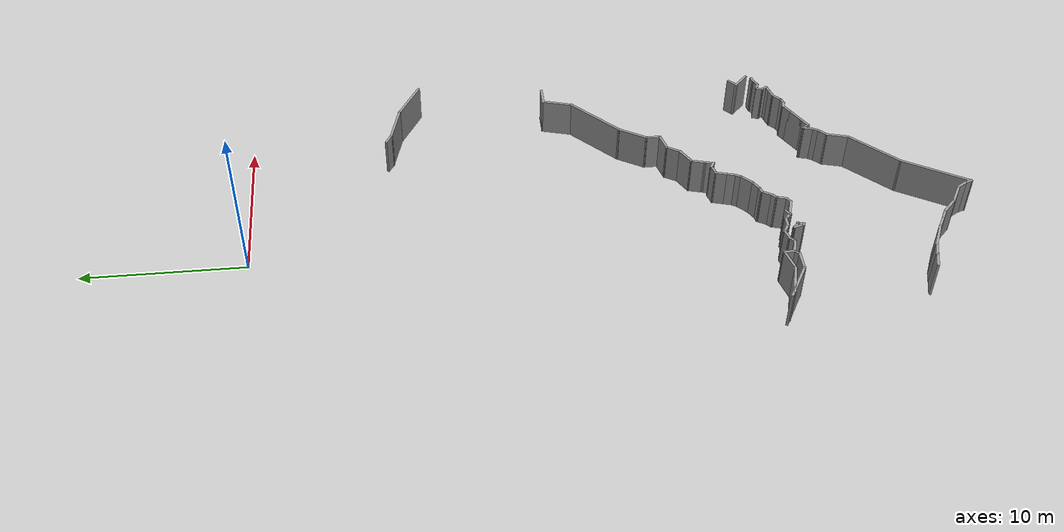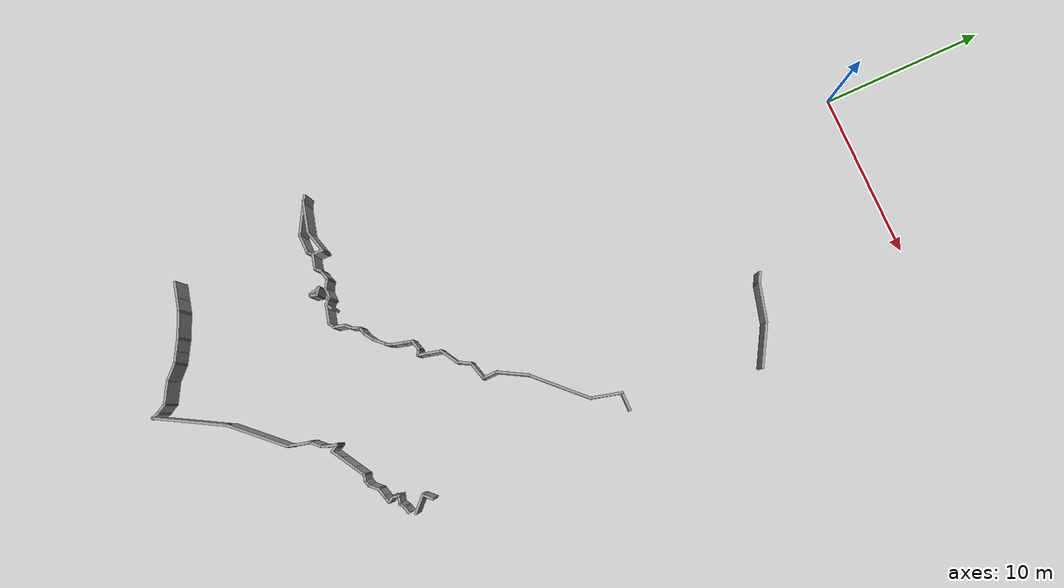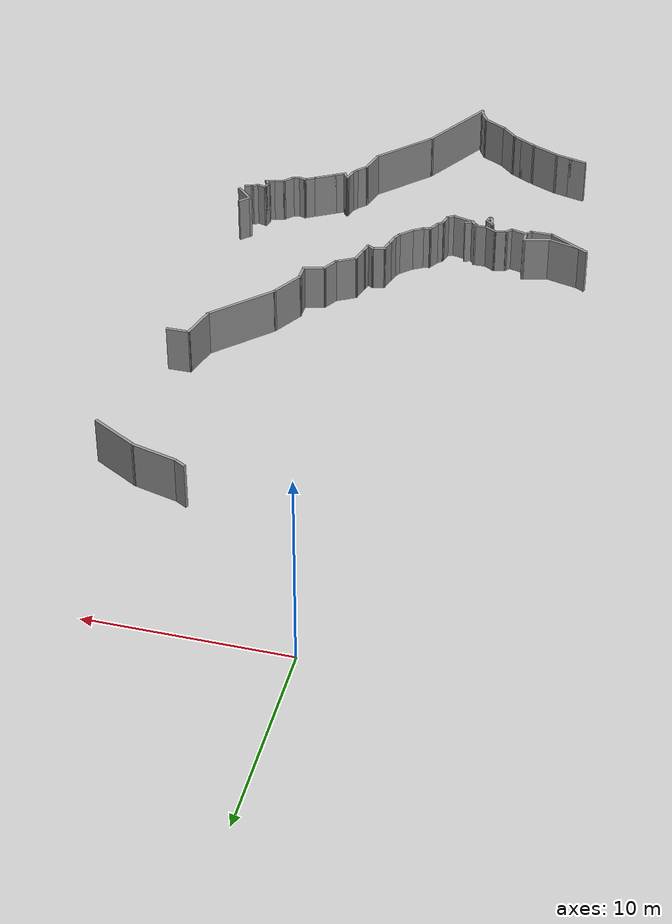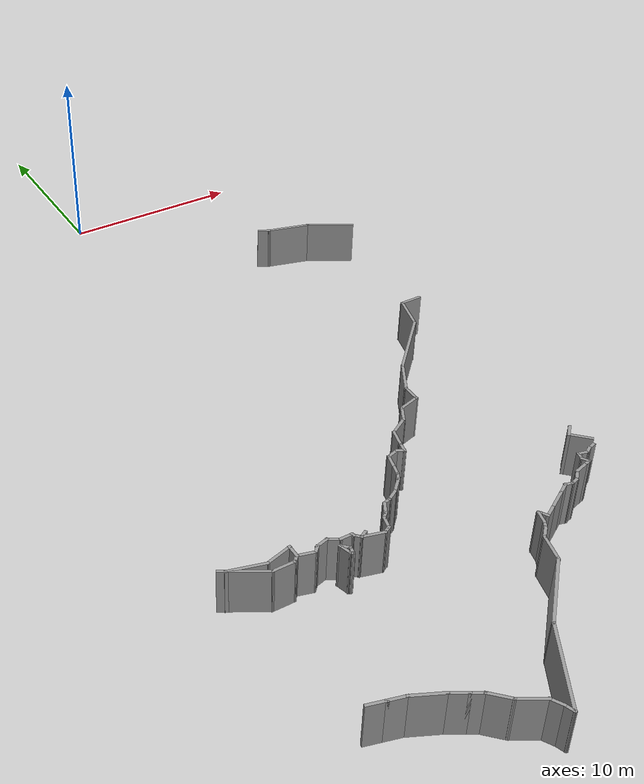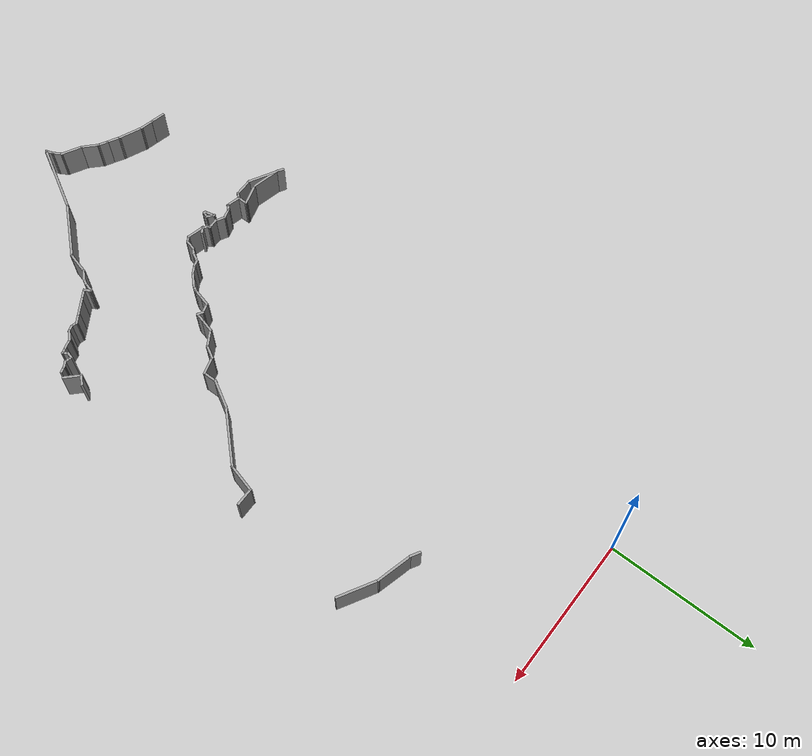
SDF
<sdf version="1.7">
 <model name="office_track1">
  <pose>2.3626 4.43866 0 0 -0 0</pose>
  <link name="Wall_111">
   <collision name="Wall_111_Collision">
    <geometry><box><size>2 0.15 2.5</size></box></geometry>
    <pose>0 0 1.25 0 -0 0</pose>
   </collision>
   <visual name="Wall_111_Visual">
    <pose>0 0 1.25 0 -0 0</pose>
    <geometry><box><size>2 0.15 2.5</size></box></geometry>
    <material>
     <script><uri>file://media/materials/scripts/gazebo.material</uri><name>Gazebo/Grey</name></script>
     <ambient>1 1 1 1</ambient>
    </material>
    <meta><layer>0</layer></meta>
   </visual>
   <pose>-8.63653 -35.8732 0 0 -0 -0.261799</pose>
  </link>
  <link name="Wall_112">
   <collision name="Wall_112_Collision">
    <geometry><box><size>1.5 0.15 2.5</size></box></geometry>
    <pose>0 0 1.25 0 -0 0</pose>
   </collision>
   <visual name="Wall_112_Visual">
    <pose>0 0 1.25 0 -0 0</pose>
    <geometry><box><size>1.5 0.15 2.5</size></box></geometry>
    <material>
     <script><uri>file://media/materials/scripts/gazebo.material</uri><name>Gazebo/Grey</name></script>
     <ambient>1 1 1 1</ambient>
    </material>
    <meta><layer>0</layer></meta>
   </visual>
   <pose>-7.09104 -35.9379 0 0 -0 0.261799</pose>
  </link>
  <link name="Wall_113">
   <collision name="Wall_113_Collision">
    <geometry><box><size>0.75 0.15 2.5</size></box></geometry>
    <pose>0 0 1.25 0 -0 0</pose>
   </collision>
   <visual name="Wall_113_Visual">
    <pose>0 0 1.25 0 -0 0</pose>
    <geometry><box><size>0.75 0.15 2.5</size></box></geometry>
    <material>
     <script><uri>file://media/materials/scripts/gazebo.material</uri><name>Gazebo/Grey</name></script>
     <ambient>1 1 1 1</ambient>
    </material>
    <meta><layer>0</layer></meta>
   </visual>
   <pose>-6.43904 -36.0632 0 0 -0 -1.5708</pose>
  </link>
  <link name="Wall_114">
   <collision name="Wall_114_Collision">
    <geometry><box><size>0.5 0.15 2.5</size></box></geometry>
    <pose>0 0 1.25 0 -0 0</pose>
   </collision>
   <visual name="Wall_114_Visual">
    <pose>0 0 1.25 0 -0 0</pose>
    <geometry><box><size>0.5 0.15 2.5</size></box></geometry>
    <material>
     <script><uri>file://media/materials/scripts/gazebo.material</uri><name>Gazebo/Grey</name></script>
     <ambient>1 1 1 1</ambient>
    </material>
    <meta><layer>0</layer></meta>
   </visual>
   <pose>-6.56279 -36.4869 0 0 -0 -2.35619</pose>
  </link>
  <link name="Wall_115">
   <collision name="Wall_115_Collision">
    <geometry><box><size>1.25 0.15 2.5</size></box></geometry>
    <pose>0 0 1.25 0 -0 0</pose>
   </collision>
   <visual name="Wall_115_Visual">
    <pose>0 0 1.25 0 -0 0</pose>
    <geometry><box><size>1.25 0.15 2.5</size></box></geometry>
    <material>
     <script><uri>file://media/materials/scripts/gazebo.material</uri><name>Gazebo/Grey</name></script>
     <ambient>1 1 1 1</ambient>
    </material>
    <meta><layer>0</layer></meta>
   </visual>
   <pose>-7.23653 -36.6107 0 0 -0 3.14159</pose>
  </link>
  <link name="Wall_116">
   <collision name="Wall_116_Collision">
    <geometry><box><size>2.5 0.15 2.5</size></box></geometry>
    <pose>0 0 1.25 0 -0 0</pose>
   </collision>
   <visual name="Wall_116_Visual">
    <pose>0 0 1.25 0 -0 0</pose>
    <geometry><box><size>2.5 0.15 2.5</size></box></geometry>
    <material>
     <script><uri>file://media/materials/scripts/gazebo.material</uri><name>Gazebo/Grey</name></script>
     <ambient>1 1 1 1</ambient>
    </material>
    <meta><layer>0</layer></meta>
   </visual>
   <pose>-8.80411 -36.0232 0 0 -0 2.61799</pose>
  </link>
  <link name="Wall_118">
   <collision name="Wall_118_Collision">
    <geometry><box><size>1 0.15 2.5</size></box></geometry>
    <pose>0 0 1.25 0 -0 0</pose>
   </collision>
   <visual name="Wall_118_Visual">
    <pose>0 0 1.25 0 -0 0</pose>
    <geometry><box><size>1 0.15 2.5</size></box></geometry>
    <material>
     <script><uri>file://media/materials/scripts/gazebo.material</uri><name>Gazebo/Grey</name></script>
     <ambient>1 1 1 1</ambient>
    </material>
    <meta><layer>0</layer></meta>
   </visual>
   <pose>-6.02853 -36.4732 0 0 -0 -0.261799</pose>
  </link>
  <link name="Wall_119">
   <collision name="Wall_119_Collision">
    <geometry><box><size>0.5 0.15 2.5</size></box></geometry>
    <pose>0 0 1.25 0 -0 0</pose>
   </collision>
   <visual name="Wall_119_Visual">
    <pose>0 0 1.25 0 -0 0</pose>
    <geometry><box><size>0.5 0.15 2.5</size></box></geometry>
    <material>
     <script><uri>file://media/materials/scripts/gazebo.material</uri><name>Gazebo/Grey</name></script>
     <ambient>1 1 1 1</ambient>
    </material>
    <meta><layer>0</layer></meta>
   </visual>
   <pose>-5.49426 -36.4594 0 0 -0 0.785398</pose>
  </link>
  <link name="Wall_120">
   <collision name="Wall_120_Collision">
    <geometry><box><size>0.75 0.15 2.5</size></box></geometry>
    <pose>0 0 1.25 0 -0 0</pose>
   </collision>
   <visual name="Wall_120_Visual">
    <pose>0 0 1.25 0 -0 0</pose>
    <geometry><box><size>0.75 0.15 2.5</size></box></geometry>
    <material>
     <script><uri>file://media/materials/scripts/gazebo.material</uri><name>Gazebo/Grey</name></script>
     <ambient>1 1 1 1</ambient>
    </material>
    <meta><layer>0</layer></meta>
   </visual>
   <pose>-5.08074 -36.258 0 0 -0 0.261799</pose>
  </link>
  <link name="Wall_121">
   <collision name="Wall_121_Collision">
    <geometry><box><size>0.75 0.15 2.5</size></box></geometry>
    <pose>0 0 1.25 0 -0 0</pose>
   </collision>
   <visual name="Wall_121_Visual">
    <pose>0 0 1.25 0 -0 0</pose>
    <geometry><box><size>0.75 0.15 2.5</size></box></geometry>
    <material>
     <script><uri>file://media/materials/scripts/gazebo.material</uri><name>Gazebo/Grey</name></script>
     <ambient>1 1 1 1</ambient>
    </material>
    <meta><layer>0</layer></meta>
   </visual>
   <pose>-4.53116 -36.3304 0 0 -0 -0.523599</pose>
  </link>
  <link name="Wall_122">
   <collision name="Wall_122_Collision">
    <geometry><box><size>0.75 0.15 2.5</size></box></geometry>
    <pose>0 0 1.25 0 -0 0</pose>
   </collision>
   <visual name="Wall_122_Visual">
    <pose>0 0 1.25 0 -0 0</pose>
    <geometry><box><size>0.75 0.15 2.5</size></box></geometry>
    <material>
     <script><uri>file://media/materials/scripts/gazebo.material</uri><name>Gazebo/Grey</name></script>
     <ambient>1 1 1 1</ambient>
    </material>
    <meta><layer>0</layer></meta>
   </visual>
   <pose>-3.97135 -36.4804 0 0 -0 0</pose>
  </link>
  <link name="Wall_123">
   <collision name="Wall_123_Collision">
    <geometry><box><size>0.25 0.15 2.5</size></box></geometry>
    <pose>0 0 1.25 0 -0 0</pose>
   </collision>
   <visual name="Wall_123_Visual">
    <pose>0 0 1.25 0 -0 0</pose>
    <geometry><box><size>0.25 0.15 2.5</size></box></geometry>
    <material>
     <script><uri>file://media/materials/scripts/gazebo.material</uri><name>Gazebo/Grey</name></script>
     <ambient>1 1 1 1</ambient>
    </material>
    <meta><layer>0</layer></meta>
   </visual>
   <pose>-3.65841 -36.5287 0 0 -0 -1.309</pose>
  </link>
  <link name="Wall_124">
   <collision name="Wall_124_Collision">
    <geometry><box><size>0.5 0.15 2.5</size></box></geometry>
    <pose>0 0 1.25 0 -0 0</pose>
   </collision>
   <visual name="Wall_124_Visual">
    <pose>0 0 1.25 0 -0 0</pose>
    <geometry><box><size>0.5 0.15 2.5</size></box></geometry>
    <material>
     <script><uri>file://media/materials/scripts/gazebo.material</uri><name>Gazebo/Grey</name></script>
     <ambient>1 1 1 1</ambient>
    </material>
    <meta><layer>0</layer></meta>
   </visual>
   <pose>-3.52172 -36.7007 0 0 -0 -0.785398</pose>
  </link>
  <link name="Wall_125">
   <collision name="Wall_125_Collision">
    <geometry><box><size>0.5 0.15 2.5</size></box></geometry>
    <pose>0 0 1.25 0 -0 0</pose>
   </collision>
   <visual name="Wall_125_Visual">
    <pose>0 0 1.25 0 -0 0</pose>
    <geometry><box><size>0.5 0.15 2.5</size></box></geometry>
    <material>
     <script><uri>file://media/materials/scripts/gazebo.material</uri><name>Gazebo/Grey</name></script>
     <ambient>1 1 1 1</ambient>
    </material>
    <meta><layer>0</layer></meta>
   </visual>
   <pose>-3.24642 -36.737 0 0 -0 0.523599</pose>
  </link>
  <link name="Wall_127">
   <collision name="Wall_127_Collision">
    <geometry><box><size>0.75 0.15 2.5</size></box></geometry>
    <pose>0 0 1.25 0 -0 0</pose>
   </collision>
   <visual name="Wall_127_Visual">
    <pose>0 0 1.25 0 -0 0</pose>
    <geometry><box><size>0.75 0.15 2.5</size></box></geometry>
    <material>
     <script><uri>file://media/materials/scripts/gazebo.material</uri><name>Gazebo/Grey</name></script>
     <ambient>1 1 1 1</ambient>
    </material>
    <meta><layer>0</layer></meta>
   </visual>
   <pose>-4.42722 -37.1073 0 0 -0 -1.309</pose>
  </link>
  <link name="Wall_128">
   <collision name="Wall_128_Collision">
    <geometry><box><size>0.25 0.15 2.5</size></box></geometry>
    <pose>0 0 1.25 0 -0 0</pose>
   </collision>
   <visual name="Wall_128_Visual">
    <pose>0 0 1.25 0 -0 0</pose>
    <geometry><box><size>0.25 0.15 2.5</size></box></geometry>
    <material>
     <script><uri>file://media/materials/scripts/gazebo.material</uri><name>Gazebo/Grey</name></script>
     <ambient>1 1 1 1</ambient>
    </material>
    <meta><layer>0</layer></meta>
   </visual>
   <pose>-4.30628 -37.4221 0 0 -0 -0.523599</pose>
  </link>
  <link name="Wall_129">
   <collision name="Wall_129_Collision">
    <geometry><box><size>0.5 0.15 2.5</size></box></geometry>
    <pose>0 0 1.25 0 -0 0</pose>
   </collision>
   <visual name="Wall_129_Visual">
    <pose>0 0 1.25 0 -0 0</pose>
    <geometry><box><size>0.5 0.15 2.5</size></box></geometry>
    <material>
     <script><uri>file://media/materials/scripts/gazebo.material</uri><name>Gazebo/Grey</name></script>
     <ambient>1 1 1 1</ambient>
    </material>
    <meta><layer>0</layer></meta>
   </visual>
   <pose>-4.21768 -37.278 0 0 -0 1.309</pose>
  </link>
  <link name="Wall_130">
   <collision name="Wall_130_Collision">
    <geometry><box><size>0.592159 0.15 2.5</size></box></geometry>
    <pose>0 0 1.25 0 -0 0</pose>
   </collision>
   <visual name="Wall_130_Visual">
    <pose>0 0 1.25 0 -0 0</pose>
    <geometry><box><size>0.592159 0.15 2.5</size></box></geometry>
    <material>
     <script><uri>file://media/materials/scripts/gazebo.material</uri><name>Gazebo/Grey</name></script>
     <ambient>1 1 1 1</ambient>
    </material>
    <meta><layer>0</layer></meta>
   </visual>
   <pose>-4.33863 -36.9632 0 0 -0 2.42181</pose>
  </link>
  <link name="Wall_132">
   <collision name="Wall_132_Collision">
    <geometry><box><size>1.25 0.15 2.5</size></box></geometry>
    <pose>0 0 1.25 0 -0 0</pose>
   </collision>
   <visual name="Wall_132_Visual">
    <pose>0 0 1.25 0 -0 0</pose>
    <geometry><box><size>1.25 0.15 2.5</size></box></geometry>
    <material>
     <script><uri>file://media/materials/scripts/gazebo.material</uri><name>Gazebo/Grey</name></script>
     <ambient>1 1 1 1</ambient>
    </material>
    <meta><layer>0</layer></meta>
   </visual>
   <pose>-2.86672 -36.9668 0 0 -0 -0.261799</pose>
  </link>
  <link name="Wall_133">
   <collision name="Wall_133_Collision">
    <geometry><box><size>0.5 0.15 2.5</size></box></geometry>
    <pose>0 0 1.25 0 -0 0</pose>
   </collision>
   <visual name="Wall_133_Visual">
    <pose>0 0 1.25 0 -0 0</pose>
    <geometry><box><size>0.5 0.15 2.5</size></box></geometry>
    <material>
     <script><uri>file://media/materials/scripts/gazebo.material</uri><name>Gazebo/Grey</name></script>
     <ambient>1 1 1 1</ambient>
    </material>
    <meta><layer>0</layer></meta>
   </visual>
   <pose>-2.18391 -37.0217 0 0 -0 0.523599</pose>
  </link>
  <link name="Wall_134">
   <collision name="Wall_134_Collision">
    <geometry><box><size>0.75 0.15 2.5</size></box></geometry>
    <pose>0 0 1.25 0 -0 0</pose>
   </collision>
   <visual name="Wall_134_Visual">
    <pose>0 0 1.25 0 -0 0</pose>
    <geometry><box><size>0.75 0.15 2.5</size></box></geometry>
    <material>
     <script><uri>file://media/materials/scripts/gazebo.material</uri><name>Gazebo/Grey</name></script>
     <ambient>1 1 1 1</ambient>
    </material>
    <meta><layer>0</layer></meta>
   </visual>
   <pose>-1.95471 -36.6444 0 0 -0 1.309</pose>
  </link>
  <link name="Wall_135">
   <collision name="Wall_135_Collision">
    <geometry><box><size>0.5 0.15 2.5</size></box></geometry>
    <pose>0 0 1.25 0 -0 0</pose>
   </collision>
   <visual name="Wall_135_Visual">
    <pose>0 0 1.25 0 -0 0</pose>
    <geometry><box><size>0.5 0.15 2.5</size></box></geometry>
    <material>
     <script><uri>file://media/materials/scripts/gazebo.material</uri><name>Gazebo/Grey</name></script>
     <ambient>1 1 1 1</ambient>
    </material>
    <meta><layer>0</layer></meta>
   </visual>
   <pose>-1.75332 -36.2309 0 0 -0 0.785398</pose>
  </link>
  <link name="Wall_136">
   <collision name="Wall_136_Collision">
    <geometry><box><size>0.75 0.15 2.5</size></box></geometry>
    <pose>0 0 1.25 0 -0 0</pose>
   </collision>
   <visual name="Wall_136_Visual">
    <pose>0 0 1.25 0 -0 0</pose>
    <geometry><box><size>0.75 0.15 2.5</size></box></geometry>
    <material>
     <script><uri>file://media/materials/scripts/gazebo.material</uri><name>Gazebo/Grey</name></script>
     <ambient>1 1 1 1</ambient>
    </material>
    <meta><layer>0</layer></meta>
   </visual>
   <pose>-1.47957 -35.8473 0 0 -0 1.0472</pose>
  </link>
  <link name="Wall_137">
   <collision name="Wall_137_Collision">
    <geometry><box><size>0.5 0.15 2.5</size></box></geometry>
    <pose>0 0 1.25 0 -0 0</pose>
   </collision>
   <visual name="Wall_137_Visual">
    <pose>0 0 1.25 0 -0 0</pose>
    <geometry><box><size>0.5 0.15 2.5</size></box></geometry>
    <material>
     <script><uri>file://media/materials/scripts/gazebo.material</uri><name>Gazebo/Grey</name></script>
     <ambient>1 1 1 1</ambient>
    </material>
    <meta><layer>0</layer></meta>
   </visual>
   <pose>-1.16054 -35.5422 0 0 -0 0.261799</pose>
  </link>
  <link name="Wall_138">
   <collision name="Wall_138_Collision">
    <geometry><box><size>0.75 0.15 2.5</size></box></geometry>
    <pose>0 0 1.25 0 -0 0</pose>
   </collision>
   <visual name="Wall_138_Visual">
    <pose>0 0 1.25 0 -0 0</pose>
    <geometry><box><size>0.75 0.15 2.5</size></box></geometry>
    <material>
     <script><uri>file://media/materials/scripts/gazebo.material</uri><name>Gazebo/Grey</name></script>
     <ambient>1 1 1 1</ambient>
    </material>
    <meta><layer>0</layer></meta>
   </visual>
   <pose>-0.731692 -35.3469 0 0 -0 0.523599</pose>
  </link>
  <link name="Wall_139">
   <collision name="Wall_139_Collision">
    <geometry><box><size>1 0.15 2.5</size></box></geometry>
    <pose>0 0 1.25 0 -0 0</pose>
   </collision>
   <visual name="Wall_139_Visual">
    <pose>0 0 1.25 0 -0 0</pose>
    <geometry><box><size>1 0.15 2.5</size></box></geometry>
    <material>
     <script><uri>file://media/materials/scripts/gazebo.material</uri><name>Gazebo/Grey</name></script>
     <ambient>1 1 1 1</ambient>
    </material>
    <meta><layer>0</layer></meta>
   </visual>
   <pose>-0.171364 -34.8964 0 0 -0 0.785398</pose>
  </link>
  <link name="Wall_140">
   <collision name="Wall_140_Collision">
    <geometry><box><size>0.5 0.15 2.5</size></box></geometry>
    <pose>0 0 1.25 0 -0 0</pose>
   </collision>
   <visual name="Wall_140_Visual">
    <pose>0 0 1.25 0 -0 0</pose>
    <geometry><box><size>0.5 0.15 2.5</size></box></geometry>
    <material>
     <script><uri>file://media/materials/scripts/gazebo.material</uri><name>Gazebo/Grey</name></script>
     <ambient>1 1 1 1</ambient>
    </material>
    <meta><layer>0</layer></meta>
   </visual>
   <pose>0.216656 -34.4443 0 0 -0 1.0472</pose>
  </link>
  <link name="Wall_141">
   <collision name="Wall_141_Collision">
    <geometry><box><size>0.75 0.15 2.5</size></box></geometry>
    <pose>0 0 1.25 0 -0 0</pose>
   </collision>
   <visual name="Wall_141_Visual">
    <pose>0 0 1.25 0 -0 0</pose>
    <geometry><box><size>0.75 0.15 2.5</size></box></geometry>
    <material>
     <script><uri>file://media/materials/scripts/gazebo.material</uri><name>Gazebo/Grey</name></script>
     <ambient>1 1 1 1</ambient>
    </material>
    <meta><layer>0</layer></meta>
   </visual>
   <pose>0.381802 -34.003 0 0 -0 1.309</pose>
  </link>
  <link name="Wall_142">
   <collision name="Wall_142_Collision">
    <geometry><box><size>0.75 0.15 2.5</size></box></geometry>
    <pose>0 0 1.25 0 -0 0</pose>
   </collision>
   <visual name="Wall_142_Visual">
    <pose>0 0 1.25 0 -0 0</pose>
    <geometry><box><size>0.75 0.15 2.5</size></box></geometry>
    <material>
     <script><uri>file://media/materials/scripts/gazebo.material</uri><name>Gazebo/Grey</name></script>
     <ambient>1 1 1 1</ambient>
    </material>
    <meta><layer>0</layer></meta>
   </visual>
   <pose>0.537094 -33.4234 0 0 -0 1.309</pose>
  </link>
  <link name="Wall_143">
   <collision name="Wall_143_Collision">
    <geometry><box><size>0.75 0.15 2.5</size></box></geometry>
    <pose>0 0 1.25 0 -0 0</pose>
   </collision>
   <visual name="Wall_143_Visual">
    <pose>0 0 1.25 0 -0 0</pose>
    <geometry><box><size>0.75 0.15 2.5</size></box></geometry>
    <material>
     <script><uri>file://media/materials/scripts/gazebo.material</uri><name>Gazebo/Grey</name></script>
     <ambient>1 1 1 1</ambient>
    </material>
    <meta><layer>0</layer></meta>
   </visual>
   <pose>0.904517 -33.056 0 0 -0 0.261799</pose>
  </link>
  <link name="Wall_144">
   <collision name="Wall_144_Collision">
    <geometry><box><size>0.5 0.15 2.5</size></box></geometry>
    <pose>0 0 1.25 0 -0 0</pose>
   </collision>
   <visual name="Wall_144_Visual">
    <pose>0 0 1.25 0 -0 0</pose>
    <geometry><box><size>0.5 0.15 2.5</size></box></geometry>
    <material>
     <script><uri>file://media/materials/scripts/gazebo.material</uri><name>Gazebo/Grey</name></script>
     <ambient>1 1 1 1</ambient>
    </material>
    <meta><layer>0</layer></meta>
   </visual>
   <pose>1.34585 -33.0659 0 0 -0 -0.523599</pose>
  </link>
  <link name="Wall_146">
   <collision name="Wall_146_Collision">
    <geometry><box><size>2 0.15 2.5</size></box></geometry>
    <pose>0 0 1.25 0 -0 0</pose>
   </collision>
   <visual name="Wall_146_Visual">
    <pose>0 0 1.25 0 -0 0</pose>
    <geometry><box><size>2 0.15 2.5</size></box></geometry>
    <material>
     <script><uri>file://media/materials/scripts/gazebo.material</uri><name>Gazebo/Grey</name></script>
     <ambient>1 1 1 1</ambient>
    </material>
    <meta><layer>0</layer></meta>
   </visual>
   <pose>4.73961 -28.6112 0 0 -0 -2.0944</pose>
  </link>
  <link name="Wall_147">
   <collision name="Wall_147_Collision">
    <geometry><box><size>1 0.15 2.5</size></box></geometry>
    <pose>0 0 1.25 0 -0 0</pose>
   </collision>
   <visual name="Wall_147_Visual">
    <pose>0 0 1.25 0 -0 0</pose>
    <geometry><box><size>1 0.15 2.5</size></box></geometry>
    <material>
     <script><uri>file://media/materials/scripts/gazebo.material</uri><name>Gazebo/Grey</name></script>
     <ambient>1 1 1 1</ambient>
    </material>
    <meta><layer>0</layer></meta>
   </visual>
   <pose>4.27712 -29.8373 0 0 -0 -1.5708</pose>
  </link>
  <link name="Wall_148">
   <collision name="Wall_148_Collision">
    <geometry><box><size>1.25 0.15 2.5</size></box></geometry>
    <pose>0 0 1.25 0 -0 0</pose>
   </collision>
   <visual name="Wall_148_Visual">
    <pose>0 0 1.25 0 -0 0</pose>
    <geometry><box><size>1.25 0.15 2.5</size></box></geometry>
    <material>
     <script><uri>file://media/materials/scripts/gazebo.material</uri><name>Gazebo/Grey</name></script>
     <ambient>1 1 1 1</ambient>
    </material>
    <meta><layer>0</layer></meta>
   </visual>
   <pose>3.74586 -30.4046 0 0 -0 -2.87979</pose>
  </link>
  <link name="Wall_149">
   <collision name="Wall_149_Collision">
    <geometry><box><size>1 0.15 2.5</size></box></geometry>
    <pose>0 0 1.25 0 -0 0</pose>
   </collision>
   <visual name="Wall_149_Visual">
    <pose>0 0 1.25 0 -0 0</pose>
    <geometry><box><size>1 0.15 2.5</size></box></geometry>
    <material>
     <script><uri>file://media/materials/scripts/gazebo.material</uri><name>Gazebo/Grey</name></script>
     <ambient>1 1 1 1</ambient>
    </material>
    <meta><layer>0</layer></meta>
   </visual>
   <pose>3.0021 -30.915 0 0 -0 -2.0944</pose>
  </link>
  <link name="Wall_150">
   <collision name="Wall_150_Collision">
    <geometry><box><size>1.25 0.15 2.5</size></box></geometry>
    <pose>0 0 1.25 0 -0 0</pose>
   </collision>
   <visual name="Wall_150_Visual">
    <pose>0 0 1.25 0 -0 0</pose>
    <geometry><box><size>1.25 0.15 2.5</size></box></geometry>
    <material>
     <script><uri>file://media/materials/scripts/gazebo.material</uri><name>Gazebo/Grey</name></script>
     <ambient>1 1 1 1</ambient>
    </material>
    <meta><layer>0</layer></meta>
   </visual>
   <pose>2.31328 -31.5581 0 0 -0 -2.61799</pose>
  </link>
  <link name="Wall_151">
   <collision name="Wall_151_Collision">
    <geometry><box><size>1 0.15 2.5</size></box></geometry>
    <pose>0 0 1.25 0 -0 0</pose>
   </collision>
   <visual name="Wall_151_Visual">
    <pose>0 0 1.25 0 -0 0</pose>
    <geometry><box><size>1 0.15 2.5</size></box></geometry>
    <material>
     <script><uri>file://media/materials/scripts/gazebo.material</uri><name>Gazebo/Grey</name></script>
     <ambient>1 1 1 1</ambient>
    </material>
    <meta><layer>0</layer></meta>
   </visual>
   <pose>1.72697 -32.2436 0 0 -0 -1.8326</pose>
  </link>
  <link name="Wall_152">
   <collision name="Wall_152_Collision">
    <geometry><box><size>0.663368 0.15 2.5</size></box></geometry>
    <pose>0 0 1.25 0 -0 0</pose>
   </collision>
   <visual name="Wall_152_Visual">
    <pose>0 0 1.25 0 -0 0</pose>
    <geometry><box><size>0.663368 0.15 2.5</size></box></geometry>
    <material>
     <script><uri>file://media/materials/scripts/gazebo.material</uri><name>Gazebo/Grey</name></script>
     <ambient>1 1 1 1</ambient>
    </material>
    <meta><layer>0</layer></meta>
   </visual>
   <pose>1.55719 -32.9037 0 0 -0 -1.80587</pose>
  </link>
  <link name="Wall_154">
   <collision name="Wall_154_Collision">
    <geometry><box><size>4 0.15 2.5</size></box></geometry>
    <pose>0 0 1.25 0 -0 0</pose>
   </collision>
   <visual name="Wall_154_Visual">
    <pose>0 0 1.25 0 -0 0</pose>
    <geometry><box><size>4 0.15 2.5</size></box></geometry>
    <material>
     <script><uri>file://media/materials/scripts/gazebo.material</uri><name>Gazebo/Grey</name></script>
     <ambient>1 1 1 1</ambient>
    </material>
    <meta><layer>0</layer></meta>
   </visual>
   <pose>6.5633 -26.4489 0 0 -0 0.785398</pose>
  </link>
  <link name="Wall_155">
   <collision name="Wall_155_Collision">
    <geometry><box><size>2 0.15 2.5</size></box></geometry>
    <pose>0 0 1.25 0 -0 0</pose>
   </collision>
   <visual name="Wall_155_Visual">
    <pose>0 0 1.25 0 -0 0</pose>
    <geometry><box><size>2 0.15 2.5</size></box></geometry>
    <material>
     <script><uri>file://media/materials/scripts/gazebo.material</uri><name>Gazebo/Grey</name></script>
     <ambient>1 1 1 1</ambient>
    </material>
    <meta><layer>0</layer></meta>
   </visual>
   <pose>8.16388 -24.1943 0 0 -0 1.309</pose>
  </link>
  <link name="Wall_156">
   <collision name="Wall_156_Collision">
    <geometry><box><size>1.25 0.15 2.5</size></box></geometry>
    <pose>0 0 1.25 0 -0 0</pose>
   </collision>
   <visual name="Wall_156_Visual">
    <pose>0 0 1.25 0 -0 0</pose>
    <geometry><box><size>1.25 0.15 2.5</size></box></geometry>
    <material>
     <script><uri>file://media/materials/scripts/gazebo.material</uri><name>Gazebo/Grey</name></script>
     <ambient>1 1 1 1</ambient>
    </material>
    <meta><layer>0</layer></meta>
   </visual>
   <pose>8.95329 -23.3008 0 0 -0 0</pose>
  </link>
  <link name="Wall_172">
   <collision name="Wall_172_Collision">
    <geometry><box><size>0.75 0.15 2.5</size></box></geometry>
    <pose>0 0 1.25 0 -0 0</pose>
   </collision>
   <visual name="Wall_172_Visual">
    <pose>0 0 1.25 0 -0 0</pose>
    <geometry><box><size>0.75 0.15 2.5</size></box></geometry>
    <material>
     <script><uri>file://media/materials/scripts/gazebo.material</uri><name>Gazebo/Grey</name></script>
     <ambient>1 1 1 1</ambient>
    </material>
    <meta><layer>0</layer></meta>
   </visual>
   <pose>5.6718 -13.1985 0 0 -0 -0.523599</pose>
  </link>
  <link name="Wall_173">
   <collision name="Wall_173_Collision">
    <geometry><box><size>2.5 0.15 2.5</size></box></geometry>
    <pose>0 0 1.25 0 -0 0</pose>
   </collision>
   <visual name="Wall_173_Visual">
    <pose>0 0 1.25 0 -0 0</pose>
    <geometry><box><size>2.5 0.15 2.5</size></box></geometry>
    <material>
     <script><uri>file://media/materials/scripts/gazebo.material</uri><name>Gazebo/Grey</name></script>
     <ambient>1 1 1 1</ambient>
    </material>
    <meta><layer>0</layer></meta>
   </visual>
   <pose>7.06657 -13.6526 0 0 -0 -0.261799</pose>
  </link>
  <link name="Wall_174">
   <collision name="Wall_174_Collision">
    <geometry><box><size>2.76813 0.15 2.5</size></box></geometry>
    <pose>0 0 1.25 0 -0 0</pose>
   </collision>
   <visual name="Wall_174_Visual">
    <pose>0 0 1.25 0 -0 0</pose>
    <geometry><box><size>2.76813 0.15 2.5</size></box></geometry>
    <material>
     <script><uri>file://media/materials/scripts/gazebo.material</uri><name>Gazebo/Grey</name></script>
     <ambient>1 1 1 1</ambient>
    </material>
    <meta><layer>0</layer></meta>
   </visual>
   <pose>9.33408 -14.6132 0 0 -0 -0.52534</pose>
  </link>
  <link name="Wall_418">
   <collision name="Wall_418_Collision">
    <geometry><box><size>1.25 0.15 2.5</size></box></geometry>
    <pose>0 0 1.25 0 -0 0</pose>
   </collision>
   <visual name="Wall_418_Visual">
    <pose>0 0 1.25 0 -0 0</pose>
    <geometry><box><size>1.25 0.15 2.5</size></box></geometry>
    <material>
     <script><uri>file://media/materials/scripts/gazebo.material</uri><name>Gazebo/Grey</name></script>
     <ambient>1 1 1 1</ambient>
    </material>
    <meta><layer>0</layer></meta>
   </visual>
   <pose>9.33556 -36.5447 0 0 -0 2.35619</pose>
  </link>
  <link name="Wall_419">
   <collision name="Wall_419_Collision">
    <geometry><box><size>0.75 0.15 2.5</size></box></geometry>
    <pose>0 0 1.25 0 -0 0</pose>
   </collision>
   <visual name="Wall_419_Visual">
    <pose>0 0 1.25 0 -0 0</pose>
    <geometry><box><size>0.75 0.15 2.5</size></box></geometry>
    <material>
     <script><uri>file://media/materials/scripts/gazebo.material</uri><name>Gazebo/Grey</name></script>
     <ambient>1 1 1 1</ambient>
    </material>
    <meta><layer>0</layer></meta>
   </visual>
   <pose>9.15878 -35.9437 0 0 -0 0.785398</pose>
  </link>
  <link name="Wall_430">
   <collision name="Wall_430_Collision">
    <geometry><box><size>1.5 0.15 2.5</size></box></geometry>
    <pose>0 0 1.25 0 -0 0</pose>
   </collision>
   <visual name="Wall_430_Visual">
    <pose>0 0 1.25 0 -0 0</pose>
    <geometry><box><size>1.5 0.15 2.5</size></box></geometry>
    <material>
     <script><uri>file://media/materials/scripts/gazebo.material</uri><name>Gazebo/Grey</name></script>
     <ambient>1 1 1 1</ambient>
    </material>
    <meta><layer>0</layer></meta>
   </visual>
   <pose>3.32291 -41.4762 0 0 -0 1.309</pose>
  </link>
  <link name="Wall_431">
   <collision name="Wall_431_Collision">
    <geometry><box><size>0.75 0.15 2.5</size></box></geometry>
    <pose>0 0 1.25 0 -0 0</pose>
   </collision>
   <visual name="Wall_431_Visual">
    <pose>0 0 1.25 0 -0 0</pose>
    <geometry><box><size>0.75 0.15 2.5</size></box></geometry>
    <material>
     <script><uri>file://media/materials/scripts/gazebo.material</uri><name>Gazebo/Grey</name></script>
     <ambient>1 1 1 1</ambient>
    </material>
    <meta><layer>0</layer></meta>
   </visual>
   <pose>3.70974 -40.6121 0 0 -0 0.785398</pose>
  </link>
  <link name="Wall_432">
   <collision name="Wall_432_Collision">
    <geometry><box><size>0.5 0.15 2.5</size></box></geometry>
    <pose>0 0 1.25 0 -0 0</pose>
   </collision>
   <visual name="Wall_432_Visual">
    <pose>0 0 1.25 0 -0 0</pose>
    <geometry><box><size>0.5 0.15 2.5</size></box></geometry>
    <material>
     <script><uri>file://media/materials/scripts/gazebo.material</uri><name>Gazebo/Grey</name></script>
     <ambient>1 1 1 1</ambient>
    </material>
    <meta><layer>0</layer></meta>
   </visual>
   <pose>4.00938 -40.2484 0 0 -0 1.0472</pose>
  </link>
  <link name="Wall_433">
   <collision name="Wall_433_Collision">
    <geometry><box><size>0.75 0.15 2.5</size></box></geometry>
    <pose>0 0 1.25 0 -0 0</pose>
   </collision>
   <visual name="Wall_433_Visual">
    <pose>0 0 1.25 0 -0 0</pose>
    <geometry><box><size>0.75 0.15 2.5</size></box></geometry>
    <material>
     <script><uri>file://media/materials/scripts/gazebo.material</uri><name>Gazebo/Grey</name></script>
     <ambient>1 1 1 1</ambient>
    </material>
    <meta><layer>0</layer></meta>
   </visual>
   <pose>4.17452 -39.807 0 0 -0 1.309</pose>
  </link>
  <link name="Wall_434">
   <collision name="Wall_434_Collision">
    <geometry><box><size>0.25 0.15 2.5</size></box></geometry>
    <pose>0 0 1.25 0 -0 0</pose>
   </collision>
   <visual name="Wall_434_Visual">
    <pose>0 0 1.25 0 -0 0</pose>
    <geometry><box><size>0.25 0.15 2.5</size></box></geometry>
    <material>
     <script><uri>file://media/materials/scripts/gazebo.material</uri><name>Gazebo/Grey</name></script>
     <ambient>1 1 1 1</ambient>
    </material>
    <meta><layer>0</layer></meta>
   </visual>
   <pose>4.28752 -39.5526 0 0 -0 -0.785398</pose>
  </link>
  <link name="Wall_435">
   <collision name="Wall_435_Collision">
    <geometry><box><size>0.5 0.15 2.5</size></box></geometry>
    <pose>0 0 1.25 0 -0 0</pose>
   </collision>
   <visual name="Wall_435_Visual">
    <pose>0 0 1.25 0 -0 0</pose>
    <geometry><box><size>0.5 0.15 2.5</size></box></geometry>
    <material>
     <script><uri>file://media/materials/scripts/gazebo.material</uri><name>Gazebo/Grey</name></script>
     <ambient>1 1 1 1</ambient>
    </material>
    <meta><layer>0</layer></meta>
   </visual>
   <pose>4.41038 -39.7395 0 0 -0 -1.0472</pose>
  </link>
  <link name="Wall_436">
   <collision name="Wall_436_Collision">
    <geometry><box><size>0.75 0.15 2.5</size></box></geometry>
    <pose>0 0 1.25 0 -0 0</pose>
   </collision>
   <visual name="Wall_436_Visual">
    <pose>0 0 1.25 0 -0 0</pose>
    <geometry><box><size>0.75 0.15 2.5</size></box></geometry>
    <material>
     <script><uri>file://media/materials/scripts/gazebo.material</uri><name>Gazebo/Grey</name></script>
     <ambient>1 1 1 1</ambient>
    </material>
    <meta><layer>0</layer></meta>
   </visual>
   <pose>4.75769 -39.7411 0 0 -0 0.523599</pose>
  </link>
  <link name="Wall_437">
   <collision name="Wall_437_Collision">
    <geometry><box><size>1.25 0.15 2.5</size></box></geometry>
    <pose>0 0 1.25 0 -0 0</pose>
   </collision>
   <visual name="Wall_437_Visual">
    <pose>0 0 1.25 0 -0 0</pose>
    <geometry><box><size>1.25 0.15 2.5</size></box></geometry>
    <material>
     <script><uri>file://media/materials/scripts/gazebo.material</uri><name>Gazebo/Grey</name></script>
     <ambient>1 1 1 1</ambient>
    </material>
    <meta><layer>0</layer></meta>
   </visual>
   <pose>5.49381 -39.3161 0 0 -0 0.523599</pose>
  </link>
  <link name="Wall_438">
   <collision name="Wall_438_Collision">
    <geometry><box><size>0.75 0.15 2.5</size></box></geometry>
    <pose>0 0 1.25 0 -0 0</pose>
   </collision>
   <visual name="Wall_438_Visual">
    <pose>0 0 1.25 0 -0 0</pose>
    <geometry><box><size>0.75 0.15 2.5</size></box></geometry>
    <material>
     <script><uri>file://media/materials/scripts/gazebo.material</uri><name>Gazebo/Grey</name></script>
     <ambient>1 1 1 1</ambient>
    </material>
    <meta><layer>0</layer></meta>
   </visual>
   <pose>6.22993 -38.8911 0 0 -0 0.523599</pose>
  </link>
  <link name="Wall_439">
   <collision name="Wall_439_Collision">
    <geometry><box><size>0.5 0.15 2.5</size></box></geometry>
    <pose>0 0 1.25 0 -0 0</pose>
   </collision>
   <visual name="Wall_439_Visual">
    <pose>0 0 1.25 0 -0 0</pose>
    <geometry><box><size>0.5 0.15 2.5</size></box></geometry>
    <material>
     <script><uri>file://media/materials/scripts/gazebo.material</uri><name>Gazebo/Grey</name></script>
     <ambient>1 1 1 1</ambient>
    </material>
    <meta><layer>0</layer></meta>
   </visual>
   <pose>6.65877 -38.7864 0 0 -0 -0.261799</pose>
  </link>
  <link name="Wall_440">
   <collision name="Wall_440_Collision">
    <geometry><box><size>0.5 0.15 2.5</size></box></geometry>
    <pose>0 0 1.25 0 -0 0</pose>
   </collision>
   <visual name="Wall_440_Visual">
    <pose>0 0 1.25 0 -0 0</pose>
    <geometry><box><size>0.5 0.15 2.5</size></box></geometry>
    <material>
     <script><uri>file://media/materials/scripts/gazebo.material</uri><name>Gazebo/Grey</name></script>
     <ambient>1 1 1 1</ambient>
    </material>
    <meta><layer>0</layer></meta>
   </visual>
   <pose>6.99685 -38.7864 0 0 -0 0.261799</pose>
  </link>
  <link name="Wall_441">
   <collision name="Wall_441_Collision">
    <geometry><box><size>0.75 0.15 2.5</size></box></geometry>
    <pose>0 0 1.25 0 -0 0</pose>
   </collision>
   <visual name="Wall_441_Visual">
    <pose>0 0 1.25 0 -0 0</pose>
    <geometry><box><size>0.75 0.15 2.5</size></box></geometry>
    <material>
     <script><uri>file://media/materials/scripts/gazebo.material</uri><name>Gazebo/Grey</name></script>
     <ambient>1 1 1 1</ambient>
    </material>
    <meta><layer>0</layer></meta>
   </visual>
   <pose>7.37802 -38.5289 0 0 -0 0.785398</pose>
  </link>
  <link name="Wall_442">
   <collision name="Wall_442_Collision">
    <geometry><box><size>0.75 0.15 2.5</size></box></geometry>
    <pose>0 0 1.25 0 -0 0</pose>
   </collision>
   <visual name="Wall_442_Visual">
    <pose>0 0 1.25 0 -0 0</pose>
    <geometry><box><size>0.75 0.15 2.5</size></box></geometry>
    <material>
     <script><uri>file://media/materials/scripts/gazebo.material</uri><name>Gazebo/Grey</name></script>
     <ambient>1 1 1 1</ambient>
    </material>
    <meta><layer>0</layer></meta>
   </visual>
   <pose>7.87993 -38.2392 0 0 -0 0.261799</pose>
  </link>
  <link name="Wall_443">
   <collision name="Wall_443_Collision">
    <geometry><box><size>0.5 0.15 2.5</size></box></geometry>
    <pose>0 0 1.25 0 -0 0</pose>
   </collision>
   <visual name="Wall_443_Visual">
    <pose>0 0 1.25 0 -0 0</pose>
    <geometry><box><size>0.5 0.15 2.5</size></box></geometry>
    <material>
     <script><uri>file://media/materials/scripts/gazebo.material</uri><name>Gazebo/Grey</name></script>
     <ambient>1 1 1 1</ambient>
    </material>
    <meta><layer>0</layer></meta>
   </visual>
   <pose>8.33874 -38.1162 0 0 -0 0.261799</pose>
  </link>
  <link name="Wall_444">
   <collision name="Wall_444_Collision">
    <geometry><box><size>0.5 0.15 2.5</size></box></geometry>
    <pose>0 0 1.25 0 -0 0</pose>
   </collision>
   <visual name="Wall_444_Visual">
    <pose>0 0 1.25 0 -0 0</pose>
    <geometry><box><size>0.5 0.15 2.5</size></box></geometry>
    <material>
     <script><uri>file://media/materials/scripts/gazebo.material</uri><name>Gazebo/Grey</name></script>
     <ambient>1 1 1 1</ambient>
    </material>
    <meta><layer>0</layer></meta>
   </visual>
   <pose>8.42028 -37.9194 0 0 -0 2.0944</pose>
  </link>
  <link name="Wall_445">
   <collision name="Wall_445_Collision">
    <geometry><box><size>0.5 0.15 2.5</size></box></geometry>
    <pose>0 0 1.25 0 -0 0</pose>
   </collision>
   <visual name="Wall_445_Visual">
    <pose>0 0 1.25 0 -0 0</pose>
    <geometry><box><size>0.5 0.15 2.5</size></box></geometry>
    <material>
     <script><uri>file://media/materials/scripts/gazebo.material</uri><name>Gazebo/Grey</name></script>
     <ambient>1 1 1 1</ambient>
    </material>
    <meta><layer>0</layer></meta>
   </visual>
   <pose>8.37807 -37.5988 0 0 -0 1.309</pose>
  </link>
  <link name="Wall_446">
   <collision name="Wall_446_Collision">
    <geometry><box><size>0.25 0.15 2.5</size></box></geometry>
    <pose>0 0 1.25 0 -0 0</pose>
   </collision>
   <visual name="Wall_446_Visual">
    <pose>0 0 1.25 0 -0 0</pose>
    <geometry><box><size>0.25 0.15 2.5</size></box></geometry>
    <material>
     <script><uri>file://media/materials/scripts/gazebo.material</uri><name>Gazebo/Grey</name></script>
     <ambient>1 1 1 1</ambient>
    </material>
    <meta><layer>0</layer></meta>
   </visual>
   <pose>8.47166 -37.4427 0 0 -0 -0.261799</pose>
  </link>
  <link name="Wall_447">
   <collision name="Wall_447_Collision">
    <geometry><box><size>0.5 0.15 2.5</size></box></geometry>
    <pose>0 0 1.25 0 -0 0</pose>
   </collision>
   <visual name="Wall_447_Visual">
    <pose>0 0 1.25 0 -0 0</pose>
    <geometry><box><size>0.5 0.15 2.5</size></box></geometry>
    <material>
     <script><uri>file://media/materials/scripts/gazebo.material</uri><name>Gazebo/Grey</name></script>
     <ambient>1 1 1 1</ambient>
    </material>
    <meta><layer>0</layer></meta>
   </visual>
   <pose>8.689 -37.5009 0 0 -0 -0.261799</pose>
  </link>
  <link name="Wall_448">
   <collision name="Wall_448_Collision">
    <geometry><box><size>0.5 0.15 2.5</size></box></geometry>
    <pose>0 0 1.25 0 -0 0</pose>
   </collision>
   <visual name="Wall_448_Visual">
    <pose>0 0 1.25 0 -0 0</pose>
    <geometry><box><size>0.5 0.15 2.5</size></box></geometry>
    <material>
     <script><uri>file://media/materials/scripts/gazebo.material</uri><name>Gazebo/Grey</name></script>
     <ambient>1 1 1 1</ambient>
    </material>
    <meta><layer>0</layer></meta>
   </visual>
   <pose>9.00959 -37.4587 0 0 -0 0.523599</pose>
  </link>
  <link name="Wall_449">
   <collision name="Wall_449_Collision">
    <geometry><box><size>0.5 0.15 2.5</size></box></geometry>
    <pose>0 0 1.25 0 -0 0</pose>
   </collision>
   <visual name="Wall_449_Visual">
    <pose>0 0 1.25 0 -0 0</pose>
    <geometry><box><size>0.5 0.15 2.5</size></box></geometry>
    <material>
     <script><uri>file://media/materials/scripts/gazebo.material</uri><name>Gazebo/Grey</name></script>
     <ambient>1 1 1 1</ambient>
    </material>
    <meta><layer>0</layer></meta>
   </visual>
   <pose>9.33018 -37.3259 0 0 -0 0.261799</pose>
  </link>
  <link name="Wall_452">
   <collision name="Wall_452_Collision">
    <geometry><box><size>4.5 0.15 2.5</size></box></geometry>
    <pose>0 0 1.25 0 -0 0</pose>
   </collision>
   <visual name="Wall_452_Visual">
    <pose>0 0 1.25 0 -0 0</pose>
    <geometry><box><size>4.5 0.15 2.5</size></box></geometry>
    <material>
     <script><uri>file://media/materials/scripts/gazebo.material</uri><name>Gazebo/Grey</name></script>
     <ambient>1 1 1 1</ambient>
    </material>
    <meta><layer>0</layer></meta>
   </visual>
   <pose>-0.46912 -46.6634 0 0 -0 1.0472</pose>
  </link>
  <link name="Wall_453">
   <collision name="Wall_453_Collision">
    <geometry><box><size>3.81486 0.15 2.5</size></box></geometry>
    <pose>0 0 1.25 0 -0 0</pose>
   </collision>
   <visual name="Wall_453_Visual">
    <pose>0 0 1.25 0 -0 0</pose>
    <geometry><box><size>3.81486 0.15 2.5</size></box></geometry>
    <material>
     <script><uri>file://media/materials/scripts/gazebo.material</uri><name>Gazebo/Grey</name></script>
     <ambient>1 1 1 1</ambient>
    </material>
    <meta><layer>0</layer></meta>
   </visual>
   <pose>1.88329 -43.454 0 0 -0 0.808904</pose>
  </link>
  <link name="Wall_455">
   <collision name="Wall_455_Collision">
    <geometry><box><size>1 0.15 2.5</size></box></geometry>
    <pose>0 0 1.25 0 -0 0</pose>
   </collision>
   <visual name="Wall_455_Visual">
    <pose>0 0 1.25 0 -0 0</pose>
    <geometry><box><size>1 0.15 2.5</size></box></geometry>
    <material>
     <script><uri>file://media/materials/scripts/gazebo.material</uri><name>Gazebo/Grey</name></script>
     <ambient>1 1 1 1</ambient>
    </material>
    <meta><layer>0</layer></meta>
   </visual>
   <pose>-4.84398 -45.6463 0 0 -0 -0.523599</pose>
  </link>
  <link name="Wall_456">
   <collision name="Wall_456_Collision">
    <geometry><box><size>0.75 0.15 2.5</size></box></geometry>
    <pose>0 0 1.25 0 -0 0</pose>
   </collision>
   <visual name="Wall_456_Visual">
    <pose>0 0 1.25 0 -0 0</pose>
    <geometry><box><size>0.75 0.15 2.5</size></box></geometry>
    <material>
     <script><uri>file://media/materials/scripts/gazebo.material</uri><name>Gazebo/Grey</name></script>
     <ambient>1 1 1 1</ambient>
    </material>
    <meta><layer>0</layer></meta>
   </visual>
   <pose>-4.21611 -46.0088 0 0 -0 -0.523599</pose>
  </link>
  <link name="Wall_457">
   <collision name="Wall_457_Collision">
    <geometry><box><size>1.25 0.15 2.5</size></box></geometry>
    <pose>0 0 1.25 0 -0 0</pose>
   </collision>
   <visual name="Wall_457_Visual">
    <pose>0 0 1.25 0 -0 0</pose>
    <geometry><box><size>1.25 0.15 2.5</size></box></geometry>
    <material>
     <script><uri>file://media/materials/scripts/gazebo.material</uri><name>Gazebo/Grey</name></script>
     <ambient>1 1 1 1</ambient>
    </material>
    <meta><layer>0</layer></meta>
   </visual>
   <pose>-3.5674 -46.5477 0 0 -0 -0.785398</pose>
  </link>
  <link name="Wall_458">
   <collision name="Wall_458_Collision">
    <geometry><box><size>1.5 0.15 2.5</size></box></geometry>
    <pose>0 0 1.25 0 -0 0</pose>
   </collision>
   <visual name="Wall_458_Visual">
    <pose>0 0 1.25 0 -0 0</pose>
    <geometry><box><size>1.5 0.15 2.5</size></box></geometry>
    <material>
     <script><uri>file://media/materials/scripts/gazebo.material</uri><name>Gazebo/Grey</name></script>
     <ambient>1 1 1 1</ambient>
    </material>
    <meta><layer>0</layer></meta>
   </visual>
   <pose>-2.59392 -47.2741 0 0 -0 -0.523599</pose>
  </link>
  <link name="Wall_459">
   <collision name="Wall_459_Collision">
    <geometry><box><size>0.75 0.15 2.5</size></box></geometry>
    <pose>0 0 1.25 0 -0 0</pose>
   </collision>
   <visual name="Wall_459_Visual">
    <pose>0 0 1.25 0 -0 0</pose>
    <geometry><box><size>0.75 0.15 2.5</size></box></geometry>
    <material>
     <script><uri>file://media/materials/scripts/gazebo.material</uri><name>Gazebo/Grey</name></script>
     <ambient>1 1 1 1</ambient>
    </material>
    <meta><layer>0</layer></meta>
   </visual>
   <pose>-1.85935 -47.8714 0 0 -0 -1.0472</pose>
  </link>
  <link name="Wall_460">
   <collision name="Wall_460_Collision">
    <geometry><box><size>0.592963 0.15 2.5</size></box></geometry>
    <pose>0 0 1.25 0 -0 0</pose>
   </collision>
   <visual name="Wall_460_Visual">
    <pose>0 0 1.25 0 -0 0</pose>
    <geometry><box><size>0.592963 0.15 2.5</size></box></geometry>
    <material>
     <script><uri>file://media/materials/scripts/gazebo.material</uri><name>Gazebo/Grey</name></script>
     <ambient>1 1 1 1</ambient>
    </material>
    <meta><layer>0</layer></meta>
   </visual>
   <pose>-1.63299 -48.3391 0 0 -0 -1.21877</pose>
  </link>
  <link name="Wall_467">
   <collision name="Wall_467_Collision">
    <geometry><box><size>1 0.15 2.5</size></box></geometry>
    <pose>0 0 1.25 0 -0 0</pose>
   </collision>
   <visual name="Wall_467_Visual">
    <pose>0 0 1.25 0 -0 0</pose>
    <geometry><box><size>1 0.15 2.5</size></box></geometry>
    <material>
     <script><uri>file://media/materials/scripts/gazebo.material</uri><name>Gazebo/Grey</name></script>
     <ambient>1 1 1 1</ambient>
    </material>
    <meta><layer>0</layer></meta>
   </visual>
   <pose>-7.86972 -44.4413 0 0 -0 -0.261799</pose>
  </link>
  <link name="Wall_468">
   <collision name="Wall_468_Collision">
    <geometry><box><size>1 0.15 2.5</size></box></geometry>
    <pose>0 0 1.25 0 -0 0</pose>
   </collision>
   <visual name="Wall_468_Visual">
    <pose>0 0 1.25 0 -0 0</pose>
    <geometry><box><size>1 0.15 2.5</size></box></geometry>
    <material>
     <script><uri>file://media/materials/scripts/gazebo.material</uri><name>Gazebo/Grey</name></script>
     <ambient>1 1 1 1</ambient>
    </material>
    <meta><layer>0</layer></meta>
   </visual>
   <pose>-7.04868 -44.6613 0 0 -0 -0.261799</pose>
  </link>
  <link name="Wall_469">
   <collision name="Wall_469_Collision">
    <geometry><box><size>1.7225 0.15 2.5</size></box></geometry>
    <pose>0 0 1.25 0 -0 0</pose>
   </collision>
   <visual name="Wall_469_Visual">
    <pose>0 0 1.25 0 -0 0</pose>
    <geometry><box><size>1.7225 0.15 2.5</size></box></geometry>
    <material>
     <script><uri>file://media/materials/scripts/gazebo.material</uri><name>Gazebo/Grey</name></script>
     <ambient>1 1 1 1</ambient>
    </material>
    <meta><layer>0</layer></meta>
   </visual>
   <pose>-5.9251 -45.1025 0 0 -0 -0.4349</pose>
  </link>
  <static>1</static>
 </model>
</sdf>
